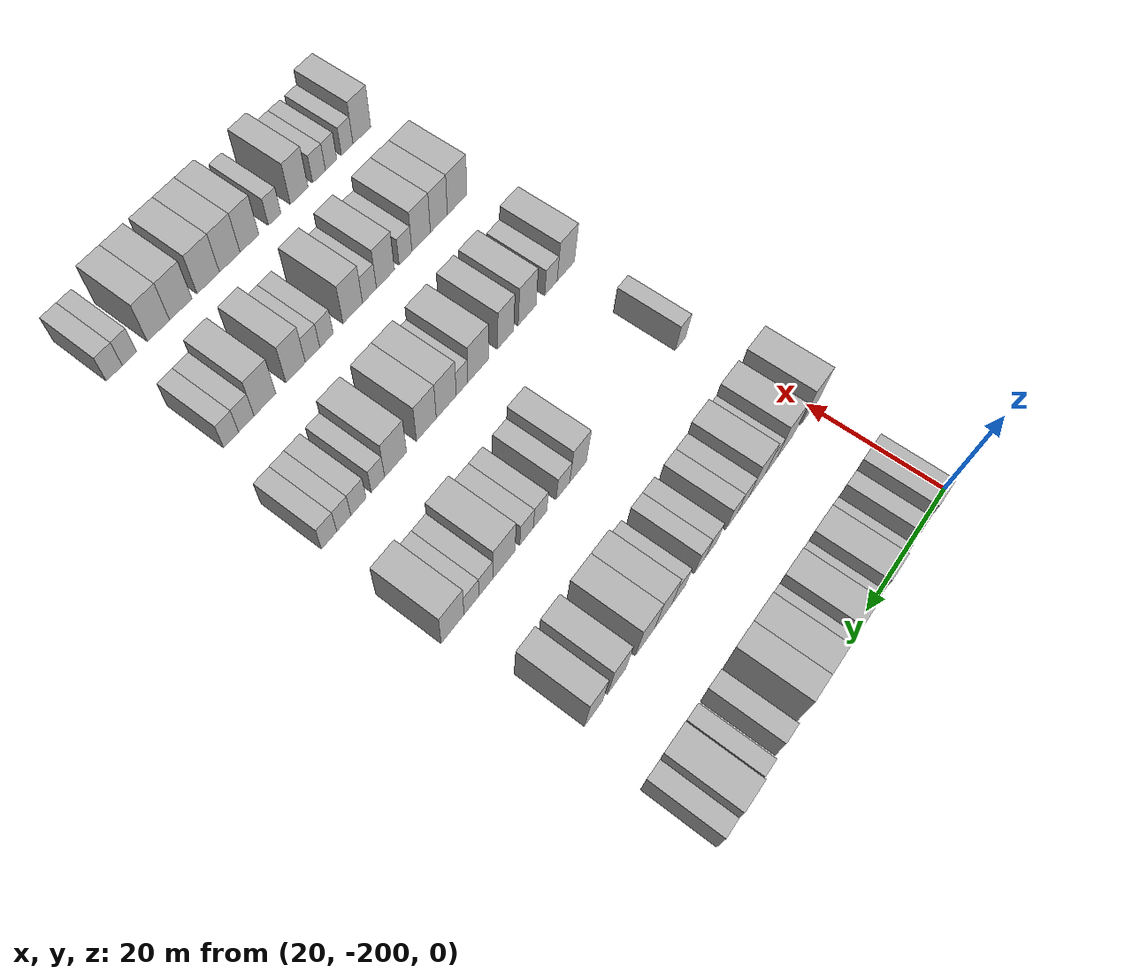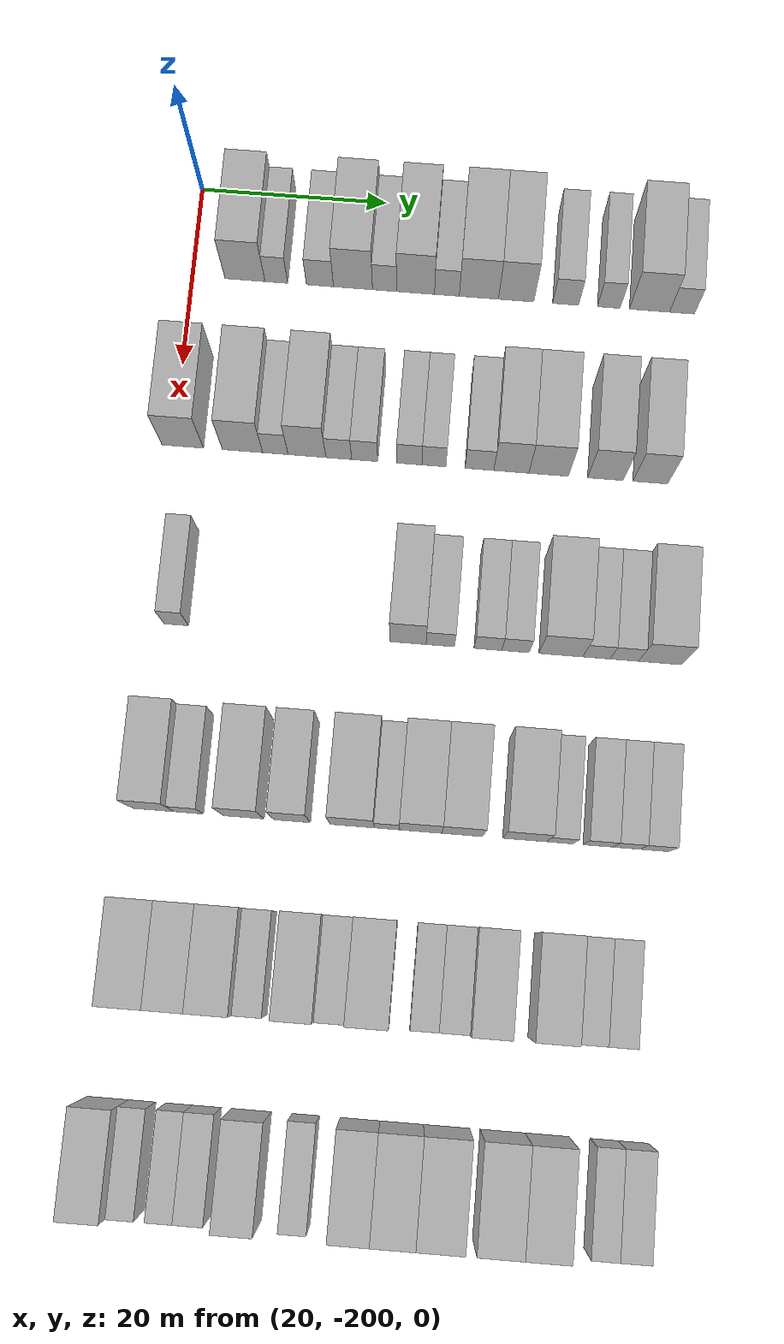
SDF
<sdf version="1.6">
 <world name="default">
  <model name="building_36">
   <static>1</static>
   <pose>25.0000 -194.3737 0 0.000000 0.000000 0.000000</pose>
   <link name="link">
    <pose>0 0 4.50 0 0 0</pose>
    <collision name="collision"><geometry><box><size>10.0000 4.2893 9.0000</size></box></geometry></collision>
    <visual name="visual">
     <cast_shadows>0</cast_shadows>
     <geometry><box><size>10.0000 4.2893 9.0000</size></box></geometry>
     <material>
      <script>
       <uri>model://HANNAS_wall/materials/scripts</uri>
       <uri>model://HANNAS_wall/materials/textures</uri>
       <name>vrc/HANNAS_wall</name>
      </script>
     </material>
    </visual>
   </link>
  </model>
  <model name="building_37">
   <static>1</static>
   <pose>25.0000 -191.0097 0 0.000000 0.000000 0.000000</pose>
   <link name="link">
    <pose>0 0 3.00 0 0 0</pose>
    <collision name="collision"><geometry><box><size>10.0000 2.4387 6.0000</size></box></geometry></collision>
    <visual name="visual">
     <cast_shadows>0</cast_shadows>
     <geometry><box><size>10.0000 2.4387 6.0000</size></box></geometry>
     <material>
      <script>
       <uri>model://HANNAS_wall/materials/scripts</uri>
       <uri>model://HANNAS_wall/materials/textures</uri>
       <name>vrc/HANNAS_wall</name>
      </script>
     </material>
    </visual>
   </link>
  </model>
  <model name="building_38">
   <static>1</static>
   <pose>25.0000 -186.3396 0 0.000000 0.000000 0.000000</pose>
   <link name="link">
    <pose>0 0 3.00 0 0 0</pose>
    <collision name="collision"><geometry><box><size>10.0000 2.9016 6.0000</size></box></geometry></collision>
    <visual name="visual">
     <cast_shadows>0</cast_shadows>
     <geometry><box><size>10.0000 2.9016 6.0000</size></box></geometry>
     <material>
      <script>
       <uri>model://HANNAS_wall/materials/scripts</uri>
       <uri>model://HANNAS_wall/materials/textures</uri>
       <name>vrc/HANNAS_wall</name>
      </script>
     </material>
    </visual>
   </link>
  </model>
  <model name="building_39">
   <static>1</static>
   <pose>25.0000 -182.8082 0 0.000000 0.000000 0.000000</pose>
   <link name="link">
    <pose>0 0 4.50 0 0 0</pose>
    <collision name="collision"><geometry><box><size>10.0000 4.1612 9.0000</size></box></geometry></collision>
    <visual name="visual">
     <cast_shadows>0</cast_shadows>
     <geometry><box><size>10.0000 4.1612 9.0000</size></box></geometry>
     <material>
      <script>
       <uri>model://HANNAS_wall/materials/scripts</uri>
       <uri>model://HANNAS_wall/materials/textures</uri>
       <name>vrc/HANNAS_wall</name>
      </script>
     </material>
    </visual>
   </link>
  </model>
  <model name="building_40">
   <static>1</static>
   <pose>25.0000 -179.4409 0 0.000000 0.000000 0.000000</pose>
   <link name="link">
    <pose>0 0 3.00 0 0 0</pose>
    <collision name="collision"><geometry><box><size>10.0000 2.5734 6.0000</size></box></geometry></collision>
    <visual name="visual">
     <cast_shadows>0</cast_shadows>
     <geometry><box><size>10.0000 2.5734 6.0000</size></box></geometry>
     <material>
      <script>
       <uri>model://HANNAS_wall/materials/scripts</uri>
       <uri>model://HANNAS_wall/materials/textures</uri>
       <name>vrc/HANNAS_wall</name>
      </script>
     </material>
    </visual>
   </link>
  </model>
  <model name="building_41">
   <static>1</static>
   <pose>25.0000 -176.1292 0 0.000000 0.000000 0.000000</pose>
   <link name="link">
    <pose>0 0 4.50 0 0 0</pose>
    <collision name="collision"><geometry><box><size>10.0000 4.0501 9.0000</size></box></geometry></collision>
    <visual name="visual">
     <cast_shadows>0</cast_shadows>
     <geometry><box><size>10.0000 4.0501 9.0000</size></box></geometry>
     <material>
      <script>
       <uri>model://HANNAS_wall/materials/scripts</uri>
       <uri>model://HANNAS_wall/materials/textures</uri>
       <name>vrc/HANNAS_wall</name>
      </script>
     </material>
    </visual>
   </link>
  </model>
  <model name="building_42">
   <static>1</static>
   <pose>25.0000 -172.7815 0 0.000000 0.000000 0.000000</pose>
   <link name="link">
    <pose>0 0 3.00 0 0 0</pose>
    <collision name="collision"><geometry><box><size>10.0000 2.6453 6.0000</size></box></geometry></collision>
    <visual name="visual">
     <cast_shadows>0</cast_shadows>
     <geometry><box><size>10.0000 2.6453 6.0000</size></box></geometry>
     <material>
      <script>
       <uri>model://HANNAS_wall/materials/scripts</uri>
       <uri>model://HANNAS_wall/materials/textures</uri>
       <name>vrc/HANNAS_wall</name>
      </script>
     </material>
    </visual>
   </link>
  </model>
  <model name="building_43">
   <static>1</static>
   <pose>25.0000 -169.3660 0 0.000000 0.000000 0.000000</pose>
   <link name="link">
    <pose>0 0 4.50 0 0 0</pose>
    <collision name="collision"><geometry><box><size>10.0000 4.1856 9.0000</size></box></geometry></collision>
    <visual name="visual">
     <cast_shadows>0</cast_shadows>
     <geometry><box><size>10.0000 4.1856 9.0000</size></box></geometry>
     <material>
      <script>
       <uri>model://HANNAS_wall/materials/scripts</uri>
       <uri>model://HANNAS_wall/materials/textures</uri>
       <name>vrc/HANNAS_wall</name>
      </script>
     </material>
    </visual>
   </link>
  </model>
  <model name="building_44">
   <static>1</static>
   <pose>25.0000 -165.3843 0 0.000000 0.000000 0.000000</pose>
   <link name="link">
    <pose>0 0 4.50 0 0 0</pose>
    <collision name="collision"><geometry><box><size>10.0000 3.7779 9.0000</size></box></geometry></collision>
    <visual name="visual">
     <cast_shadows>0</cast_shadows>
     <geometry><box><size>10.0000 3.7779 9.0000</size></box></geometry>
     <material>
      <script>
       <uri>model://HANNAS_wall/materials/scripts</uri>
       <uri>model://HANNAS_wall/materials/textures</uri>
       <name>vrc/HANNAS_wall</name>
      </script>
     </material>
    </visual>
   </link>
  </model>
  <model name="building_45">
   <static>1</static>
   <pose>25.0000 -160.1095 0 0.000000 0.000000 0.000000</pose>
   <link name="link">
    <pose>0 0 3.00 0 0 0</pose>
    <collision name="collision"><geometry><box><size>10.0000 2.7718 6.0000</size></box></geometry></collision>
    <visual name="visual">
     <cast_shadows>0</cast_shadows>
     <geometry><box><size>10.0000 2.7718 6.0000</size></box></geometry>
     <material>
      <script>
       <uri>model://HANNAS_wall/materials/scripts</uri>
       <uri>model://HANNAS_wall/materials/textures</uri>
       <name>vrc/HANNAS_wall</name>
      </script>
     </material>
    </visual>
   </link>
  </model>
  <model name="building_46">
   <static>1</static>
   <pose>25.0000 -155.5191 0 0.000000 0.000000 0.000000</pose>
   <link name="link">
    <pose>0 0 3.00 0 0 0</pose>
    <collision name="collision"><geometry><box><size>10.0000 2.4091 6.0000</size></box></geometry></collision>
    <visual name="visual">
     <cast_shadows>0</cast_shadows>
     <geometry><box><size>10.0000 2.4091 6.0000</size></box></geometry>
     <material>
      <script>
       <uri>model://HANNAS_wall/materials/scripts</uri>
       <uri>model://HANNAS_wall/materials/textures</uri>
       <name>vrc/HANNAS_wall</name>
      </script>
     </material>
    </visual>
   </link>
  </model>
  <model name="building_47">
   <static>1</static>
   <pose>25.0000 -151.1783 0 0.000000 0.000000 0.000000</pose>
   <link name="link">
    <pose>0 0 4.50 0 0 0</pose>
    <collision name="collision"><geometry><box><size>10.0000 4.2725 9.0000</size></box></geometry></collision>
    <visual name="visual">
     <cast_shadows>0</cast_shadows>
     <geometry><box><size>10.0000 4.2725 9.0000</size></box></geometry>
     <material>
      <script>
       <uri>model://HANNAS_wall/materials/scripts</uri>
       <uri>model://HANNAS_wall/materials/textures</uri>
       <name>vrc/HANNAS_wall</name>
      </script>
     </material>
    </visual>
   </link>
  </model>
  <model name="building_48">
   <static>1</static>
   <pose>25.0000 -147.7212 0 0.000000 0.000000 0.000000</pose>
   <link name="link">
    <pose>0 0 3.00 0 0 0</pose>
    <collision name="collision"><geometry><box><size>10.0000 2.6418 6.0000</size></box></geometry></collision>
    <visual name="visual">
     <cast_shadows>0</cast_shadows>
     <geometry><box><size>10.0000 2.6418 6.0000</size></box></geometry>
     <material>
      <script>
       <uri>model://HANNAS_wall/materials/scripts</uri>
       <uri>model://HANNAS_wall/materials/textures</uri>
       <name>vrc/HANNAS_wall</name>
      </script>
     </material>
    </visual>
   </link>
  </model>
  <model name="building_214">
   <static>1</static>
   <pose>44.0000 -199.0149 0 0.000000 0.000000 0.000000</pose>
   <link name="link">
    <pose>0 0 4.50 0 0 0</pose>
    <collision name="collision"><geometry><box><size>10.0000 4.3541 9.0000</size></box></geometry></collision>
    <visual name="visual">
     <cast_shadows>0</cast_shadows>
     <geometry><box><size>10.0000 4.3541 9.0000</size></box></geometry>
     <material>
      <script>
       <uri>model://HANNAS_wall/materials/scripts</uri>
       <uri>model://HANNAS_wall/materials/textures</uri>
       <name>vrc/HANNAS_wall</name>
      </script>
     </material>
    </visual>
   </link>
  </model>
  <model name="building_215">
   <static>1</static>
   <pose>44.0000 -192.7278 0 0.000000 0.000000 0.000000</pose>
   <link name="link">
    <pose>0 0 4.50 0 0 0</pose>
    <collision name="collision"><geometry><box><size>10.0000 4.2200 9.0000</size></box></geometry></collision>
    <visual name="visual">
     <cast_shadows>0</cast_shadows>
     <geometry><box><size>10.0000 4.2200 9.0000</size></box></geometry>
     <material>
      <script>
       <uri>model://HANNAS_wall/materials/scripts</uri>
       <uri>model://HANNAS_wall/materials/textures</uri>
       <name>vrc/HANNAS_wall</name>
      </script>
     </material>
    </visual>
   </link>
  </model>
  <model name="building_216">
   <static>1</static>
   <pose>44.0000 -189.2865 0 0.000000 0.000000 0.000000</pose>
   <link name="link">
    <pose>0 0 3.00 0 0 0</pose>
    <collision name="collision"><geometry><box><size>10.0000 2.6626 6.0000</size></box></geometry></collision>
    <visual name="visual">
     <cast_shadows>0</cast_shadows>
     <geometry><box><size>10.0000 2.6626 6.0000</size></box></geometry>
     <material>
      <script>
       <uri>model://HANNAS_wall/materials/scripts</uri>
       <uri>model://HANNAS_wall/materials/textures</uri>
       <name>vrc/HANNAS_wall</name>
      </script>
     </material>
    </visual>
   </link>
  </model>
  <model name="building_217">
   <static>1</static>
   <pose>44.0000 -185.9772 0 0.000000 0.000000 0.000000</pose>
   <link name="link">
    <pose>0 0 4.50 0 0 0</pose>
    <collision name="collision"><geometry><box><size>10.0000 3.9559 9.0000</size></box></geometry></collision>
    <visual name="visual">
     <cast_shadows>0</cast_shadows>
     <geometry><box><size>10.0000 3.9559 9.0000</size></box></geometry>
     <material>
      <script>
       <uri>model://HANNAS_wall/materials/scripts</uri>
       <uri>model://HANNAS_wall/materials/textures</uri>
       <name>vrc/HANNAS_wall</name>
      </script>
     </material>
    </visual>
   </link>
  </model>
  <model name="building_218">
   <static>1</static>
   <pose>44.0000 -182.6469 0 0.000000 0.000000 0.000000</pose>
   <link name="link">
    <pose>0 0 3.00 0 0 0</pose>
    <collision name="collision"><geometry><box><size>10.0000 2.7047 6.0000</size></box></geometry></collision>
    <visual name="visual">
     <cast_shadows>0</cast_shadows>
     <geometry><box><size>10.0000 2.7047 6.0000</size></box></geometry>
     <material>
      <script>
       <uri>model://HANNAS_wall/materials/scripts</uri>
       <uri>model://HANNAS_wall/materials/textures</uri>
       <name>vrc/HANNAS_wall</name>
      </script>
     </material>
    </visual>
   </link>
  </model>
  <model name="building_219">
   <static>1</static>
   <pose>44.0000 -179.9319 0 0.000000 0.000000 0.000000</pose>
   <link name="link">
    <pose>0 0 3.00 0 0 0</pose>
    <collision name="collision"><geometry><box><size>10.0000 2.7254 6.0000</size></box></geometry></collision>
    <visual name="visual">
     <cast_shadows>0</cast_shadows>
     <geometry><box><size>10.0000 2.7254 6.0000</size></box></geometry>
     <material>
      <script>
       <uri>model://HANNAS_wall/materials/scripts</uri>
       <uri>model://HANNAS_wall/materials/textures</uri>
       <name>vrc/HANNAS_wall</name>
      </script>
     </material>
    </visual>
   </link>
  </model>
  <model name="building_220">
   <static>1</static>
   <pose>44.0000 -175.2632 0 0.000000 0.000000 0.000000</pose>
   <link name="link">
    <pose>0 0 3.00 0 0 0</pose>
    <collision name="collision"><geometry><box><size>10.0000 2.6120 6.0000</size></box></geometry></collision>
    <visual name="visual">
     <cast_shadows>0</cast_shadows>
     <geometry><box><size>10.0000 2.6120 6.0000</size></box></geometry>
     <material>
      <script>
       <uri>model://HANNAS_wall/materials/scripts</uri>
       <uri>model://HANNAS_wall/materials/textures</uri>
       <name>vrc/HANNAS_wall</name>
      </script>
     </material>
    </visual>
   </link>
  </model>
  <model name="building_221">
   <static>1</static>
   <pose>44.0000 -172.7043 0 0.000000 0.000000 0.000000</pose>
   <link name="link">
    <pose>0 0 3.00 0 0 0</pose>
    <collision name="collision"><geometry><box><size>10.0000 2.5057 6.0000</size></box></geometry></collision>
    <visual name="visual">
     <cast_shadows>0</cast_shadows>
     <geometry><box><size>10.0000 2.5057 6.0000</size></box></geometry>
     <material>
      <script>
       <uri>model://HANNAS_wall/materials/scripts</uri>
       <uri>model://HANNAS_wall/materials/textures</uri>
       <name>vrc/HANNAS_wall</name>
      </script>
     </material>
    </visual>
   </link>
  </model>
  <model name="building_222">
   <static>1</static>
   <pose>44.0000 -167.9534 0 0.000000 0.000000 0.000000</pose>
   <link name="link">
    <pose>0 0 3.00 0 0 0</pose>
    <collision name="collision"><geometry><box><size>10.0000 2.9962 6.0000</size></box></geometry></collision>
    <visual name="visual">
     <cast_shadows>0</cast_shadows>
     <geometry><box><size>10.0000 2.9962 6.0000</size></box></geometry>
     <material>
      <script>
       <uri>model://HANNAS_wall/materials/scripts</uri>
       <uri>model://HANNAS_wall/materials/textures</uri>
       <name>vrc/HANNAS_wall</name>
      </script>
     </material>
    </visual>
   </link>
  </model>
  <model name="building_223">
   <static>1</static>
   <pose>44.0000 -164.6200 0 0.000000 0.000000 0.000000</pose>
   <link name="link">
    <pose>0 0 4.50 0 0 0</pose>
    <collision name="collision"><geometry><box><size>10.0000 3.6707 9.0000</size></box></geometry></collision>
    <visual name="visual">
     <cast_shadows>0</cast_shadows>
     <geometry><box><size>10.0000 3.6707 9.0000</size></box></geometry>
     <material>
      <script>
       <uri>model://HANNAS_wall/materials/scripts</uri>
       <uri>model://HANNAS_wall/materials/textures</uri>
       <name>vrc/HANNAS_wall</name>
      </script>
     </material>
    </visual>
   </link>
  </model>
  <model name="building_224">
   <static>1</static>
   <pose>44.0000 -160.7237 0 0.000000 0.000000 0.000000</pose>
   <link name="link">
    <pose>0 0 4.50 0 0 0</pose>
    <collision name="collision"><geometry><box><size>10.0000 4.1219 9.0000</size></box></geometry></collision>
    <visual name="visual">
     <cast_shadows>0</cast_shadows>
     <geometry><box><size>10.0000 4.1219 9.0000</size></box></geometry>
     <material>
      <script>
       <uri>model://HANNAS_wall/materials/scripts</uri>
       <uri>model://HANNAS_wall/materials/textures</uri>
       <name>vrc/HANNAS_wall</name>
      </script>
     </material>
    </visual>
   </link>
  </model>
  <model name="building_225">
   <static>1</static>
   <pose>44.0000 -154.8032 0 0.000000 0.000000 0.000000</pose>
   <link name="link">
    <pose>0 0 4.50 0 0 0</pose>
    <collision name="collision"><geometry><box><size>10.0000 3.7190 9.0000</size></box></geometry></collision>
    <visual name="visual">
     <cast_shadows>0</cast_shadows>
     <geometry><box><size>10.0000 3.7190 9.0000</size></box></geometry>
     <material>
      <script>
       <uri>model://HANNAS_wall/materials/scripts</uri>
       <uri>model://HANNAS_wall/materials/textures</uri>
       <name>vrc/HANNAS_wall</name>
      </script>
     </material>
    </visual>
   </link>
  </model>
  <model name="building_226">
   <static>1</static>
   <pose>44.0000 -150.1279 0 0.000000 0.000000 0.000000</pose>
   <link name="link">
    <pose>0 0 4.50 0 0 0</pose>
    <collision name="collision"><geometry><box><size>10.0000 3.6315 9.0000</size></box></geometry></collision>
    <visual name="visual">
     <cast_shadows>0</cast_shadows>
     <geometry><box><size>10.0000 3.6315 9.0000</size></box></geometry>
     <material>
      <script>
       <uri>model://HANNAS_wall/materials/scripts</uri>
       <uri>model://HANNAS_wall/materials/textures</uri>
       <name>vrc/HANNAS_wall</name>
      </script>
     </material>
    </visual>
   </link>
  </model>
  <model name="building_381">
   <static>1</static>
   <pose>63.0000 -197.6166 0 0.000000 0.000000 0.000000</pose>
   <link name="link">
    <pose>0 0 3.00 0 0 0</pose>
    <collision name="collision"><geometry><box><size>10.0000 2.5126 6.0000</size></box></geometry></collision>
    <visual name="visual">
     <cast_shadows>0</cast_shadows>
     <geometry><box><size>10.0000 2.5126 6.0000</size></box></geometry>
     <material>
      <script>
       <uri>model://HANNAS_wall/materials/scripts</uri>
       <uri>model://HANNAS_wall/materials/textures</uri>
       <name>vrc/HANNAS_wall</name>
      </script>
     </material>
    </visual>
   </link>
  </model>
  <model name="building_382">
   <static>1</static>
   <pose>63.0000 -173.8733 0 0.000000 0.000000 0.000000</pose>
   <link name="link">
    <pose>0 0 4.50 0 0 0</pose>
    <collision name="collision"><geometry><box><size>10.0000 3.6580 9.0000</size></box></geometry></collision>
    <visual name="visual">
     <cast_shadows>0</cast_shadows>
     <geometry><box><size>10.0000 3.6580 9.0000</size></box></geometry>
     <material>
      <script>
       <uri>model://HANNAS_wall/materials/scripts</uri>
       <uri>model://HANNAS_wall/materials/textures</uri>
       <name>vrc/HANNAS_wall</name>
      </script>
     </material>
    </visual>
   </link>
  </model>
  <model name="building_383">
   <static>1</static>
   <pose>63.0000 -170.5917 0 0.000000 0.000000 0.000000</pose>
   <link name="link">
    <pose>0 0 3.00 0 0 0</pose>
    <collision name="collision"><geometry><box><size>10.0000 2.9051 6.0000</size></box></geometry></collision>
    <visual name="visual">
     <cast_shadows>0</cast_shadows>
     <geometry><box><size>10.0000 2.9051 6.0000</size></box></geometry>
     <material>
      <script>
       <uri>model://HANNAS_wall/materials/scripts</uri>
       <uri>model://HANNAS_wall/materials/textures</uri>
       <name>vrc/HANNAS_wall</name>
      </script>
     </material>
    </visual>
   </link>
  </model>
  <model name="building_384">
   <static>1</static>
   <pose>63.0000 -165.7275 0 0.000000 0.000000 0.000000</pose>
   <link name="link">
    <pose>0 0 3.00 0 0 0</pose>
    <collision name="collision"><geometry><box><size>10.0000 2.8233 6.0000</size></box></geometry></collision>
    <visual name="visual">
     <cast_shadows>0</cast_shadows>
     <geometry><box><size>10.0000 2.8233 6.0000</size></box></geometry>
     <material>
      <script>
       <uri>model://HANNAS_wall/materials/scripts</uri>
       <uri>model://HANNAS_wall/materials/textures</uri>
       <name>vrc/HANNAS_wall</name>
      </script>
     </material>
    </visual>
   </link>
  </model>
  <model name="building_385">
   <static>1</static>
   <pose>63.0000 -162.9157 0 0.000000 0.000000 0.000000</pose>
   <link name="link">
    <pose>0 0 3.00 0 0 0</pose>
    <collision name="collision"><geometry><box><size>10.0000 2.8003 6.0000</size></box></geometry></collision>
    <visual name="visual">
     <cast_shadows>0</cast_shadows>
     <geometry><box><size>10.0000 2.8003 6.0000</size></box></geometry>
     <material>
      <script>
       <uri>model://HANNAS_wall/materials/scripts</uri>
       <uri>model://HANNAS_wall/materials/textures</uri>
       <name>vrc/HANNAS_wall</name>
      </script>
     </material>
    </visual>
   </link>
  </model>
  <model name="building_386">
   <static>1</static>
   <pose>63.0000 -158.2765 0 0.000000 0.000000 0.000000</pose>
   <link name="link">
    <pose>0 0 4.50 0 0 0</pose>
    <collision name="collision"><geometry><box><size>10.0000 4.4781 9.0000</size></box></geometry></collision>
    <visual name="visual">
     <cast_shadows>0</cast_shadows>
     <geometry><box><size>10.0000 4.4781 9.0000</size></box></geometry>
     <material>
      <script>
       <uri>model://HANNAS_wall/materials/scripts</uri>
       <uri>model://HANNAS_wall/materials/textures</uri>
       <name>vrc/HANNAS_wall</name>
      </script>
     </material>
    </visual>
   </link>
  </model>
  <model name="building_387">
   <static>1</static>
   <pose>63.0000 -154.6472 0 0.000000 0.000000 0.000000</pose>
   <link name="link">
    <pose>0 0 3.00 0 0 0</pose>
    <collision name="collision"><geometry><box><size>10.0000 2.7806 6.0000</size></box></geometry></collision>
    <visual name="visual">
     <cast_shadows>0</cast_shadows>
     <geometry><box><size>10.0000 2.7806 6.0000</size></box></geometry>
     <material>
      <script>
       <uri>model://HANNAS_wall/materials/scripts</uri>
       <uri>model://HANNAS_wall/materials/textures</uri>
       <name>vrc/HANNAS_wall</name>
      </script>
     </material>
    </visual>
   </link>
  </model>
  <model name="building_388">
   <static>1</static>
   <pose>63.0000 -151.8113 0 0.000000 0.000000 0.000000</pose>
   <link name="link">
    <pose>0 0 3.00 0 0 0</pose>
    <collision name="collision"><geometry><box><size>10.0000 2.8911 6.0000</size></box></geometry></collision>
    <visual name="visual">
     <cast_shadows>0</cast_shadows>
     <geometry><box><size>10.0000 2.8911 6.0000</size></box></geometry>
     <material>
      <script>
       <uri>model://HANNAS_wall/materials/scripts</uri>
       <uri>model://HANNAS_wall/materials/textures</uri>
       <name>vrc/HANNAS_wall</name>
      </script>
     </material>
    </visual>
   </link>
  </model>
  <model name="building_389">
   <static>1</static>
   <pose>63.0000 -148.1747 0 0.000000 0.000000 0.000000</pose>
   <link name="link">
    <pose>0 0 4.50 0 0 0</pose>
    <collision name="collision"><geometry><box><size>10.0000 4.3822 9.0000</size></box></geometry></collision>
    <visual name="visual">
     <cast_shadows>0</cast_shadows>
     <geometry><box><size>10.0000 4.3822 9.0000</size></box></geometry>
     <material>
      <script>
       <uri>model://HANNAS_wall/materials/scripts</uri>
       <uri>model://HANNAS_wall/materials/textures</uri>
       <name>vrc/HANNAS_wall</name>
      </script>
     </material>
    </visual>
   </link>
  </model>
  <model name="building_556">
   <static>1</static>
   <pose>82.0000 -197.8174 0 0.000000 0.000000 0.000000</pose>
   <link name="link">
    <pose>0 0 4.50 0 0 0</pose>
    <collision name="collision"><geometry><box><size>10.0000 4.1216 9.0000</size></box></geometry></collision>
    <visual name="visual">
     <cast_shadows>0</cast_shadows>
     <geometry><box><size>10.0000 4.1216 9.0000</size></box></geometry>
     <material>
      <script>
       <uri>model://HANNAS_wall/materials/scripts</uri>
       <uri>model://HANNAS_wall/materials/textures</uri>
       <name>vrc/HANNAS_wall</name>
      </script>
     </material>
    </visual>
   </link>
  </model>
  <model name="building_557">
   <static>1</static>
   <pose>82.0000 -194.3016 0 0.000000 0.000000 0.000000</pose>
   <link name="link">
    <pose>0 0 3.00 0 0 0</pose>
    <collision name="collision"><geometry><box><size>10.0000 2.9100 6.0000</size></box></geometry></collision>
    <visual name="visual">
     <cast_shadows>0</cast_shadows>
     <geometry><box><size>10.0000 2.9100 6.0000</size></box></geometry>
     <material>
      <script>
       <uri>model://HANNAS_wall/materials/scripts</uri>
       <uri>model://HANNAS_wall/materials/textures</uri>
       <name>vrc/HANNAS_wall</name>
      </script>
     </material>
    </visual>
   </link>
  </model>
  <model name="building_558">
   <static>1</static>
   <pose>82.0000 -188.8024 0 0.000000 0.000000 0.000000</pose>
   <link name="link">
    <pose>0 0 4.50 0 0 0</pose>
    <collision name="collision"><geometry><box><size>10.0000 4.0884 9.0000</size></box></geometry></collision>
    <visual name="visual">
     <cast_shadows>0</cast_shadows>
     <geometry><box><size>10.0000 4.0884 9.0000</size></box></geometry>
     <material>
      <script>
       <uri>model://HANNAS_wall/materials/scripts</uri>
       <uri>model://HANNAS_wall/materials/textures</uri>
       <name>vrc/HANNAS_wall</name>
      </script>
     </material>
    </visual>
   </link>
  </model>
  <model name="building_559">
   <static>1</static>
   <pose>82.0000 -183.9393 0 0.000000 0.000000 0.000000</pose>
   <link name="link">
    <pose>0 0 4.50 0 0 0</pose>
    <collision name="collision"><geometry><box><size>10.0000 3.6378 9.0000</size></box></geometry></collision>
    <visual name="visual">
     <cast_shadows>0</cast_shadows>
     <geometry><box><size>10.0000 3.6378 9.0000</size></box></geometry>
     <material>
      <script>
       <uri>model://HANNAS_wall/materials/scripts</uri>
       <uri>model://HANNAS_wall/materials/textures</uri>
       <name>vrc/HANNAS_wall</name>
      </script>
     </material>
    </visual>
   </link>
  </model>
  <model name="building_560">
   <static>1</static>
   <pose>82.0000 -177.8992 0 0.000000 0.000000 0.000000</pose>
   <link name="link">
    <pose>0 0 4.50 0 0 0</pose>
    <collision name="collision"><geometry><box><size>10.0000 4.4423 9.0000</size></box></geometry></collision>
    <visual name="visual">
     <cast_shadows>0</cast_shadows>
     <geometry><box><size>10.0000 4.4423 9.0000</size></box></geometry>
     <material>
      <script>
       <uri>model://HANNAS_wall/materials/scripts</uri>
       <uri>model://HANNAS_wall/materials/textures</uri>
       <name>vrc/HANNAS_wall</name>
      </script>
     </material>
    </visual>
   </link>
  </model>
  <model name="building_561">
   <static>1</static>
   <pose>82.0000 -174.4331 0 0.000000 0.000000 0.000000</pose>
   <link name="link">
    <pose>0 0 3.00 0 0 0</pose>
    <collision name="collision"><geometry><box><size>10.0000 2.4900 6.0000</size></box></geometry></collision>
    <visual name="visual">
     <cast_shadows>0</cast_shadows>
     <geometry><box><size>10.0000 2.4900 6.0000</size></box></geometry>
     <material>
      <script>
       <uri>model://HANNAS_wall/materials/scripts</uri>
       <uri>model://HANNAS_wall/materials/textures</uri>
       <name>vrc/HANNAS_wall</name>
      </script>
     </material>
    </visual>
   </link>
  </model>
  <model name="building_562">
   <static>1</static>
   <pose>82.0000 -171.0962 0 0.000000 0.000000 0.000000</pose>
   <link name="link">
    <pose>0 0 4.50 0 0 0</pose>
    <collision name="collision"><geometry><box><size>10.0000 4.1839 9.0000</size></box></geometry></collision>
    <visual name="visual">
     <cast_shadows>0</cast_shadows>
     <geometry><box><size>10.0000 4.1839 9.0000</size></box></geometry>
     <material>
      <script>
       <uri>model://HANNAS_wall/materials/scripts</uri>
       <uri>model://HANNAS_wall/materials/textures</uri>
       <name>vrc/HANNAS_wall</name>
      </script>
     </material>
    </visual>
   </link>
  </model>
  <model name="building_563">
   <static>1</static>
   <pose>82.0000 -166.9566 0 0.000000 0.000000 0.000000</pose>
   <link name="link">
    <pose>0 0 4.50 0 0 0</pose>
    <collision name="collision"><geometry><box><size>10.0000 4.0953 9.0000</size></box></geometry></collision>
    <visual name="visual">
     <cast_shadows>0</cast_shadows>
     <geometry><box><size>10.0000 4.0953 9.0000</size></box></geometry>
     <material>
      <script>
       <uri>model://HANNAS_wall/materials/scripts</uri>
       <uri>model://HANNAS_wall/materials/textures</uri>
       <name>vrc/HANNAS_wall</name>
      </script>
     </material>
    </visual>
   </link>
  </model>
  <model name="building_564">
   <static>1</static>
   <pose>82.0000 -160.7216 0 0.000000 0.000000 0.000000</pose>
   <link name="link">
    <pose>0 0 4.50 0 0 0</pose>
    <collision name="collision"><geometry><box><size>10.0000 4.3746 9.0000</size></box></geometry></collision>
    <visual name="visual">
     <cast_shadows>0</cast_shadows>
     <geometry><box><size>10.0000 4.3746 9.0000</size></box></geometry>
     <material>
      <script>
       <uri>model://HANNAS_wall/materials/scripts</uri>
       <uri>model://HANNAS_wall/materials/textures</uri>
       <name>vrc/HANNAS_wall</name>
      </script>
     </material>
    </visual>
   </link>
  </model>
  <model name="building_565">
   <static>1</static>
   <pose>82.0000 -157.2140 0 0.000000 0.000000 0.000000</pose>
   <link name="link">
    <pose>0 0 3.00 0 0 0</pose>
    <collision name="collision"><geometry><box><size>10.0000 2.6405 6.0000</size></box></geometry></collision>
    <visual name="visual">
     <cast_shadows>0</cast_shadows>
     <geometry><box><size>10.0000 2.6405 6.0000</size></box></geometry>
     <material>
      <script>
       <uri>model://HANNAS_wall/materials/scripts</uri>
       <uri>model://HANNAS_wall/materials/textures</uri>
       <name>vrc/HANNAS_wall</name>
      </script>
     </material>
    </visual>
   </link>
  </model>
  <model name="building_566">
   <static>1</static>
   <pose>82.0000 -153.4265 0 0.000000 0.000000 0.000000</pose>
   <link name="link">
    <pose>0 0 3.00 0 0 0</pose>
    <collision name="collision"><geometry><box><size>10.0000 2.9345 6.0000</size></box></geometry></collision>
    <visual name="visual">
     <cast_shadows>0</cast_shadows>
     <geometry><box><size>10.0000 2.9345 6.0000</size></box></geometry>
     <material>
      <script>
       <uri>model://HANNAS_wall/materials/scripts</uri>
       <uri>model://HANNAS_wall/materials/textures</uri>
       <name>vrc/HANNAS_wall</name>
      </script>
     </material>
    </visual>
   </link>
  </model>
  <model name="building_567">
   <static>1</static>
   <pose>82.0000 -150.6162 0 0.000000 0.000000 0.000000</pose>
   <link name="link">
    <pose>0 0 3.00 0 0 0</pose>
    <collision name="collision"><geometry><box><size>10.0000 2.6862 6.0000</size></box></geometry></collision>
    <visual name="visual">
     <cast_shadows>0</cast_shadows>
     <geometry><box><size>10.0000 2.6862 6.0000</size></box></geometry>
     <material>
      <script>
       <uri>model://HANNAS_wall/materials/scripts</uri>
       <uri>model://HANNAS_wall/materials/textures</uri>
       <name>vrc/HANNAS_wall</name>
      </script>
     </material>
    </visual>
   </link>
  </model>
  <model name="building_568">
   <static>1</static>
   <pose>82.0000 -147.8282 0 0.000000 0.000000 0.000000</pose>
   <link name="link">
    <pose>0 0 3.00 0 0 0</pose>
    <collision name="collision"><geometry><box><size>10.0000 2.8898 6.0000</size></box></geometry></collision>
    <visual name="visual">
     <cast_shadows>0</cast_shadows>
     <geometry><box><size>10.0000 2.8898 6.0000</size></box></geometry>
     <material>
      <script>
       <uri>model://HANNAS_wall/materials/scripts</uri>
       <uri>model://HANNAS_wall/materials/textures</uri>
       <name>vrc/HANNAS_wall</name>
      </script>
     </material>
    </visual>
   </link>
  </model>
  <model name="building_729">
   <static>1</static>
   <pose>101.0000 -197.7006 0 0.000000 0.000000 0.000000</pose>
   <link name="link">
    <pose>0 0 4.50 0 0 0</pose>
    <collision name="collision"><geometry><box><size>10.0000 4.4781 9.0000</size></box></geometry></collision>
    <visual name="visual">
     <cast_shadows>0</cast_shadows>
     <geometry><box><size>10.0000 4.4781 9.0000</size></box></geometry>
     <material>
      <script>
       <uri>model://HANNAS_wall/materials/scripts</uri>
       <uri>model://HANNAS_wall/materials/textures</uri>
       <name>vrc/HANNAS_wall</name>
      </script>
     </material>
    </visual>
   </link>
  </model>
  <model name="building_730">
   <static>1</static>
   <pose>101.0000 -193.5278 0 0.000000 0.000000 0.000000</pose>
   <link name="link">
    <pose>0 0 4.50 0 0 0</pose>
    <collision name="collision"><geometry><box><size>10.0000 3.8673 9.0000</size></box></geometry></collision>
    <visual name="visual">
     <cast_shadows>0</cast_shadows>
     <geometry><box><size>10.0000 3.8673 9.0000</size></box></geometry>
     <material>
      <script>
       <uri>model://HANNAS_wall/materials/scripts</uri>
       <uri>model://HANNAS_wall/materials/textures</uri>
       <name>vrc/HANNAS_wall</name>
      </script>
     </material>
    </visual>
   </link>
  </model>
  <model name="building_731">
   <static>1</static>
   <pose>101.0000 -189.5299 0 0.000000 0.000000 0.000000</pose>
   <link name="link">
    <pose>0 0 4.50 0 0 0</pose>
    <collision name="collision"><geometry><box><size>10.0000 4.1286 9.0000</size></box></geometry></collision>
    <visual name="visual">
     <cast_shadows>0</cast_shadows>
     <geometry><box><size>10.0000 4.1286 9.0000</size></box></geometry>
     <material>
      <script>
       <uri>model://HANNAS_wall/materials/scripts</uri>
       <uri>model://HANNAS_wall/materials/textures</uri>
       <name>vrc/HANNAS_wall</name>
      </script>
     </material>
    </visual>
   </link>
  </model>
  <model name="building_732">
   <static>1</static>
   <pose>101.0000 -186.0473 0 0.000000 0.000000 0.000000</pose>
   <link name="link">
    <pose>0 0 3.00 0 0 0</pose>
    <collision name="collision"><geometry><box><size>10.0000 2.8366 6.0000</size></box></geometry></collision>
    <visual name="visual">
     <cast_shadows>0</cast_shadows>
     <geometry><box><size>10.0000 2.8366 6.0000</size></box></geometry>
     <material>
      <script>
       <uri>model://HANNAS_wall/materials/scripts</uri>
       <uri>model://HANNAS_wall/materials/textures</uri>
       <name>vrc/HANNAS_wall</name>
      </script>
     </material>
    </visual>
   </link>
  </model>
  <model name="building_733">
   <static>1</static>
   <pose>101.0000 -181.6837 0 0.000000 0.000000 0.000000</pose>
   <link name="link">
    <pose>0 0 4.50 0 0 0</pose>
    <collision name="collision"><geometry><box><size>10.0000 3.8907 9.0000</size></box></geometry></collision>
    <visual name="visual">
     <cast_shadows>0</cast_shadows>
     <geometry><box><size>10.0000 3.8907 9.0000</size></box></geometry>
     <material>
      <script>
       <uri>model://HANNAS_wall/materials/scripts</uri>
       <uri>model://HANNAS_wall/materials/textures</uri>
       <name>vrc/HANNAS_wall</name>
      </script>
     </material>
    </visual>
   </link>
  </model>
  <model name="building_734">
   <static>1</static>
   <pose>101.0000 -178.2540 0 0.000000 0.000000 0.000000</pose>
   <link name="link">
    <pose>0 0 3.00 0 0 0</pose>
    <collision name="collision"><geometry><box><size>10.0000 2.9687 6.0000</size></box></geometry></collision>
    <visual name="visual">
     <cast_shadows>0</cast_shadows>
     <geometry><box><size>10.0000 2.9687 6.0000</size></box></geometry>
     <material>
      <script>
       <uri>model://HANNAS_wall/materials/scripts</uri>
       <uri>model://HANNAS_wall/materials/textures</uri>
       <name>vrc/HANNAS_wall</name>
      </script>
     </material>
    </visual>
   </link>
  </model>
  <model name="building_735">
   <static>1</static>
   <pose>101.0000 -174.7176 0 0.000000 0.000000 0.000000</pose>
   <link name="link">
    <pose>0 0 4.50 0 0 0</pose>
    <collision name="collision"><geometry><box><size>10.0000 4.1040 9.0000</size></box></geometry></collision>
    <visual name="visual">
     <cast_shadows>0</cast_shadows>
     <geometry><box><size>10.0000 4.1040 9.0000</size></box></geometry>
     <material>
      <script>
       <uri>model://HANNAS_wall/materials/scripts</uri>
       <uri>model://HANNAS_wall/materials/textures</uri>
       <name>vrc/HANNAS_wall</name>
      </script>
     </material>
    </visual>
   </link>
  </model>
  <model name="building_736">
   <static>1</static>
   <pose>101.0000 -169.2922 0 0.000000 0.000000 0.000000</pose>
   <link name="link">
    <pose>0 0 3.00 0 0 0</pose>
    <collision name="collision"><geometry><box><size>10.0000 2.7469 6.0000</size></box></geometry></collision>
    <visual name="visual">
     <cast_shadows>0</cast_shadows>
     <geometry><box><size>10.0000 2.7469 6.0000</size></box></geometry>
     <material>
      <script>
       <uri>model://HANNAS_wall/materials/scripts</uri>
       <uri>model://HANNAS_wall/materials/textures</uri>
       <name>vrc/HANNAS_wall</name>
      </script>
     </material>
    </visual>
   </link>
  </model>
  <model name="building_737">
   <static>1</static>
   <pose>101.0000 -166.4560 0 0.000000 0.000000 0.000000</pose>
   <link name="link">
    <pose>0 0 3.00 0 0 0</pose>
    <collision name="collision"><geometry><box><size>10.0000 2.9254 6.0000</size></box></geometry></collision>
    <visual name="visual">
     <cast_shadows>0</cast_shadows>
     <geometry><box><size>10.0000 2.9254 6.0000</size></box></geometry>
     <material>
      <script>
       <uri>model://HANNAS_wall/materials/scripts</uri>
       <uri>model://HANNAS_wall/materials/textures</uri>
       <name>vrc/HANNAS_wall</name>
      </script>
     </material>
    </visual>
   </link>
  </model>
  <model name="building_738">
   <static>1</static>
   <pose>101.0000 -163.0713 0 0.000000 0.000000 0.000000</pose>
   <link name="link">
    <pose>0 0 4.50 0 0 0</pose>
    <collision name="collision"><geometry><box><size>10.0000 3.8441 9.0000</size></box></geometry></collision>
    <visual name="visual">
     <cast_shadows>0</cast_shadows>
     <geometry><box><size>10.0000 3.8441 9.0000</size></box></geometry>
     <material>
      <script>
       <uri>model://HANNAS_wall/materials/scripts</uri>
       <uri>model://HANNAS_wall/materials/textures</uri>
       <name>vrc/HANNAS_wall</name>
      </script>
     </material>
    </visual>
   </link>
  </model>
  <model name="building_739">
   <static>1</static>
   <pose>101.0000 -157.0561 0 0.000000 0.000000 0.000000</pose>
   <link name="link">
    <pose>0 0 4.50 0 0 0</pose>
    <collision name="collision"><geometry><box><size>10.0000 4.1863 9.0000</size></box></geometry></collision>
    <visual name="visual">
     <cast_shadows>0</cast_shadows>
     <geometry><box><size>10.0000 4.1863 9.0000</size></box></geometry>
     <material>
      <script>
       <uri>model://HANNAS_wall/materials/scripts</uri>
       <uri>model://HANNAS_wall/materials/textures</uri>
       <name>vrc/HANNAS_wall</name>
      </script>
     </material>
    </visual>
   </link>
  </model>
  <model name="building_740">
   <static>1</static>
   <pose>101.0000 -153.4947 0 0.000000 0.000000 0.000000</pose>
   <link name="link">
    <pose>0 0 3.00 0 0 0</pose>
    <collision name="collision"><geometry><box><size>10.0000 2.9364 6.0000</size></box></geometry></collision>
    <visual name="visual">
     <cast_shadows>0</cast_shadows>
     <geometry><box><size>10.0000 2.9364 6.0000</size></box></geometry>
     <material>
      <script>
       <uri>model://HANNAS_wall/materials/scripts</uri>
       <uri>model://HANNAS_wall/materials/textures</uri>
       <name>vrc/HANNAS_wall</name>
      </script>
     </material>
    </visual>
   </link>
  </model>
  <model name="building_741">
   <static>1</static>
   <pose>101.0000 -150.6174 0 0.000000 0.000000 0.000000</pose>
   <link name="link">
    <pose>0 0 3.00 0 0 0</pose>
    <collision name="collision"><geometry><box><size>10.0000 2.8183 6.0000</size></box></geometry></collision>
    <visual name="visual">
     <cast_shadows>0</cast_shadows>
     <geometry><box><size>10.0000 2.8183 6.0000</size></box></geometry>
     <material>
      <script>
       <uri>model://HANNAS_wall/materials/scripts</uri>
       <uri>model://HANNAS_wall/materials/textures</uri>
       <name>vrc/HANNAS_wall</name>
      </script>
     </material>
    </visual>
   </link>
  </model>
  <model name="building_906">
   <static>1</static>
   <pose>120.0000 -199.1592 0 0.000000 0.000000 0.000000</pose>
   <link name="link">
    <pose>0 0 4.50 0 0 0</pose>
    <collision name="collision"><geometry><box><size>10.0000 4.0430 9.0000</size></box></geometry></collision>
    <visual name="visual">
     <cast_shadows>0</cast_shadows>
     <geometry><box><size>10.0000 4.0430 9.0000</size></box></geometry>
     <material>
      <script>
       <uri>model://HANNAS_wall/materials/scripts</uri>
       <uri>model://HANNAS_wall/materials/textures</uri>
       <name>vrc/HANNAS_wall</name>
      </script>
     </material>
    </visual>
   </link>
  </model>
  <model name="building_907">
   <static>1</static>
   <pose>120.0000 -195.8283 0 0.000000 0.000000 0.000000</pose>
   <link name="link">
    <pose>0 0 3.00 0 0 0</pose>
    <collision name="collision"><geometry><box><size>10.0000 2.6188 6.0000</size></box></geometry></collision>
    <visual name="visual">
     <cast_shadows>0</cast_shadows>
     <geometry><box><size>10.0000 2.6188 6.0000</size></box></geometry>
     <material>
      <script>
       <uri>model://HANNAS_wall/materials/scripts</uri>
       <uri>model://HANNAS_wall/materials/textures</uri>
       <name>vrc/HANNAS_wall</name>
      </script>
     </material>
    </visual>
   </link>
  </model>
  <model name="building_908">
   <static>1</static>
   <pose>120.0000 -192.2460 0 0.000000 0.000000 0.000000</pose>
   <link name="link">
    <pose>0 0 3.00 0 0 0</pose>
    <collision name="collision"><geometry><box><size>10.0000 2.5457 6.0000</size></box></geometry></collision>
    <visual name="visual">
     <cast_shadows>0</cast_shadows>
     <geometry><box><size>10.0000 2.5457 6.0000</size></box></geometry>
     <material>
      <script>
       <uri>model://HANNAS_wall/materials/scripts</uri>
       <uri>model://HANNAS_wall/materials/textures</uri>
       <name>vrc/HANNAS_wall</name>
      </script>
     </material>
    </visual>
   </link>
  </model>
  <model name="building_909">
   <static>1</static>
   <pose>120.0000 -189.5588 0 0.000000 0.000000 0.000000</pose>
   <link name="link">
    <pose>0 0 3.00 0 0 0</pose>
    <collision name="collision"><geometry><box><size>10.0000 2.8289 6.0000</size></box></geometry></collision>
    <visual name="visual">
     <cast_shadows>0</cast_shadows>
     <geometry><box><size>10.0000 2.8289 6.0000</size></box></geometry>
     <material>
      <script>
       <uri>model://HANNAS_wall/materials/scripts</uri>
       <uri>model://HANNAS_wall/materials/textures</uri>
       <name>vrc/HANNAS_wall</name>
      </script>
     </material>
    </visual>
   </link>
  </model>
  <model name="building_910">
   <static>1</static>
   <pose>120.0000 -185.2246 0 0.000000 0.000000 0.000000</pose>
   <link name="link">
    <pose>0 0 4.50 0 0 0</pose>
    <collision name="collision"><geometry><box><size>10.0000 3.8394 9.0000</size></box></geometry></collision>
    <visual name="visual">
     <cast_shadows>0</cast_shadows>
     <geometry><box><size>10.0000 3.8394 9.0000</size></box></geometry>
     <material>
      <script>
       <uri>model://HANNAS_wall/materials/scripts</uri>
       <uri>model://HANNAS_wall/materials/textures</uri>
       <name>vrc/HANNAS_wall</name>
      </script>
     </material>
    </visual>
   </link>
  </model>
  <model name="building_911">
   <static>1</static>
   <pose>120.0000 -179.9831 0 0.000000 0.000000 0.000000</pose>
   <link name="link">
    <pose>0 0 3.00 0 0 0</pose>
    <collision name="collision"><geometry><box><size>10.0000 2.6435 6.0000</size></box></geometry></collision>
    <visual name="visual">
     <cast_shadows>0</cast_shadows>
     <geometry><box><size>10.0000 2.6435 6.0000</size></box></geometry>
     <material>
      <script>
       <uri>model://HANNAS_wall/materials/scripts</uri>
       <uri>model://HANNAS_wall/materials/textures</uri>
       <name>vrc/HANNAS_wall</name>
      </script>
     </material>
    </visual>
   </link>
  </model>
  <model name="building_912">
   <static>1</static>
   <pose>120.0000 -174.7340 0 0.000000 0.000000 0.000000</pose>
   <link name="link">
    <pose>0 0 4.50 0 0 0</pose>
    <collision name="collision"><geometry><box><size>10.0000 3.8547 9.0000</size></box></geometry></collision>
    <visual name="visual">
     <cast_shadows>0</cast_shadows>
     <geometry><box><size>10.0000 3.8547 9.0000</size></box></geometry>
     <material>
      <script>
       <uri>model://HANNAS_wall/materials/scripts</uri>
       <uri>model://HANNAS_wall/materials/textures</uri>
       <name>vrc/HANNAS_wall</name>
      </script>
     </material>
    </visual>
   </link>
  </model>
  <model name="building_913">
   <static>1</static>
   <pose>120.0000 -170.7182 0 0.000000 0.000000 0.000000</pose>
   <link name="link">
    <pose>0 0 4.50 0 0 0</pose>
    <collision name="collision"><geometry><box><size>10.0000 4.1770 9.0000</size></box></geometry></collision>
    <visual name="visual">
     <cast_shadows>0</cast_shadows>
     <geometry><box><size>10.0000 4.1770 9.0000</size></box></geometry>
     <material>
      <script>
       <uri>model://HANNAS_wall/materials/scripts</uri>
       <uri>model://HANNAS_wall/materials/textures</uri>
       <name>vrc/HANNAS_wall</name>
      </script>
     </material>
    </visual>
   </link>
  </model>
  <model name="building_914">
   <static>1</static>
   <pose>120.0000 -166.3946 0 0.000000 0.000000 0.000000</pose>
   <link name="link">
    <pose>0 0 4.50 0 0 0</pose>
    <collision name="collision"><geometry><box><size>10.0000 4.4701 9.0000</size></box></geometry></collision>
    <visual name="visual">
     <cast_shadows>0</cast_shadows>
     <geometry><box><size>10.0000 4.4701 9.0000</size></box></geometry>
     <material>
      <script>
       <uri>model://HANNAS_wall/materials/scripts</uri>
       <uri>model://HANNAS_wall/materials/textures</uri>
       <name>vrc/HANNAS_wall</name>
      </script>
     </material>
    </visual>
   </link>
  </model>
  <model name="building_915">
   <static>1</static>
   <pose>120.0000 -160.9907 0 0.000000 0.000000 0.000000</pose>
   <link name="link">
    <pose>0 0 4.50 0 0 0</pose>
    <collision name="collision"><geometry><box><size>10.0000 4.3377 9.0000</size></box></geometry></collision>
    <visual name="visual">
     <cast_shadows>0</cast_shadows>
     <geometry><box><size>10.0000 4.3377 9.0000</size></box></geometry>
     <material>
      <script>
       <uri>model://HANNAS_wall/materials/scripts</uri>
       <uri>model://HANNAS_wall/materials/textures</uri>
       <name>vrc/HANNAS_wall</name>
      </script>
     </material>
    </visual>
   </link>
  </model>
  <model name="building_916">
   <static>1</static>
   <pose>120.0000 -156.7050 0 0.000000 0.000000 0.000000</pose>
   <link name="link">
    <pose>0 0 4.50 0 0 0</pose>
    <collision name="collision"><geometry><box><size>10.0000 4.2338 9.0000</size></box></geometry></collision>
    <visual name="visual">
     <cast_shadows>0</cast_shadows>
     <geometry><box><size>10.0000 4.2338 9.0000</size></box></geometry>
     <material>
      <script>
       <uri>model://HANNAS_wall/materials/scripts</uri>
       <uri>model://HANNAS_wall/materials/textures</uri>
       <name>vrc/HANNAS_wall</name>
      </script>
     </material>
    </visual>
   </link>
  </model>
  <model name="building_917">
   <static>1</static>
   <pose>120.0000 -151.2559 0 0.000000 0.000000 0.000000</pose>
   <link name="link">
    <pose>0 0 3.00 0 0 0</pose>
    <collision name="collision"><geometry><box><size>10.0000 2.6644 6.0000</size></box></geometry></collision>
    <visual name="visual">
     <cast_shadows>0</cast_shadows>
     <geometry><box><size>10.0000 2.6644 6.0000</size></box></geometry>
     <material>
      <script>
       <uri>model://HANNAS_wall/materials/scripts</uri>
       <uri>model://HANNAS_wall/materials/textures</uri>
       <name>vrc/HANNAS_wall</name>
      </script>
     </material>
    </visual>
   </link>
  </model>
  <model name="building_918">
   <static>1</static>
   <pose>120.0000 -148.4506 0 0.000000 0.000000 0.000000</pose>
   <link name="link">
    <pose>0 0 3.00 0 0 0</pose>
    <collision name="collision"><geometry><box><size>10.0000 2.9464 6.0000</size></box></geometry></collision>
    <visual name="visual">
     <cast_shadows>0</cast_shadows>
     <geometry><box><size>10.0000 2.9464 6.0000</size></box></geometry>
     <material>
      <script>
       <uri>model://HANNAS_wall/materials/scripts</uri>
       <uri>model://HANNAS_wall/materials/textures</uri>
       <name>vrc/HANNAS_wall</name>
      </script>
     </material>
    </visual>
   </link>
  </model>
 </world>
</sdf>
